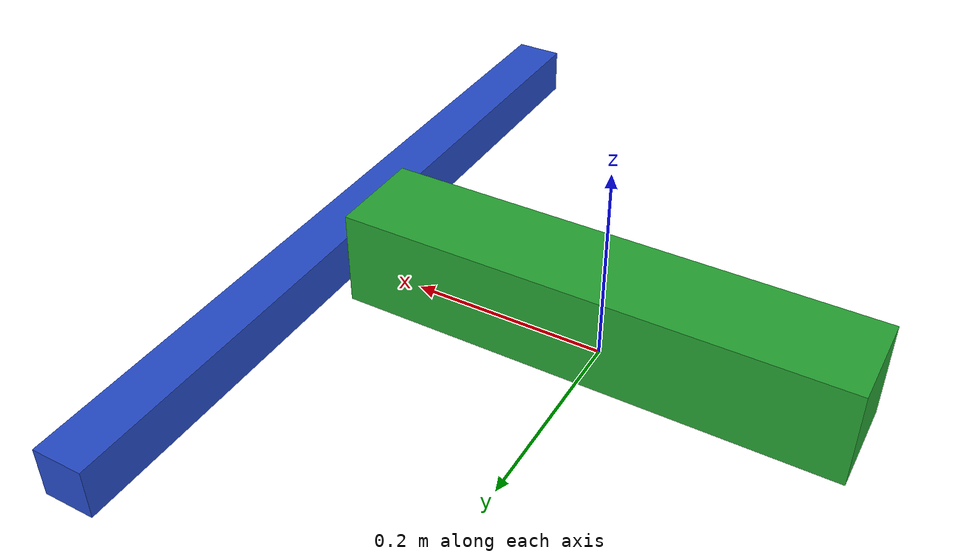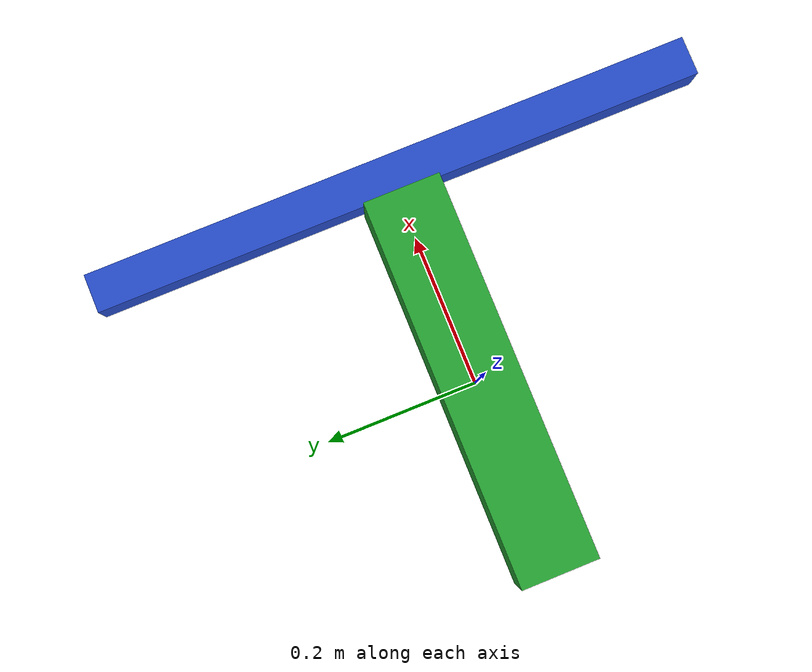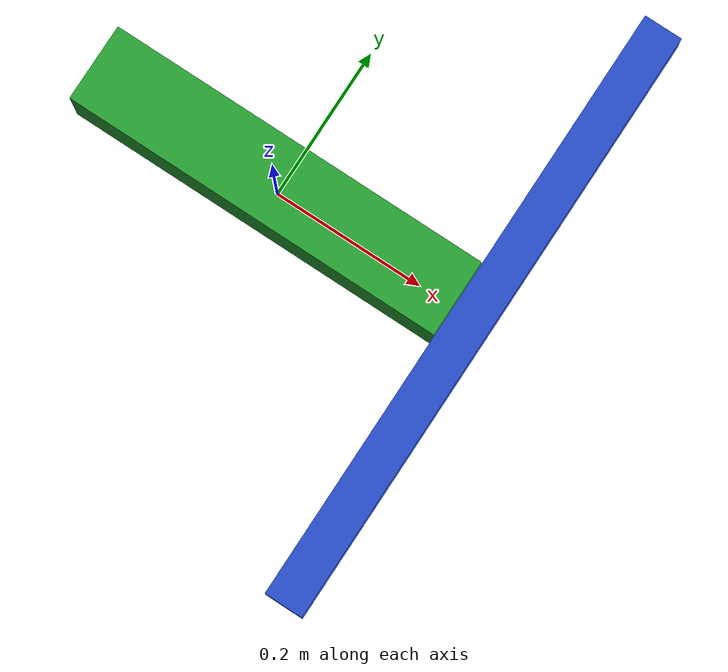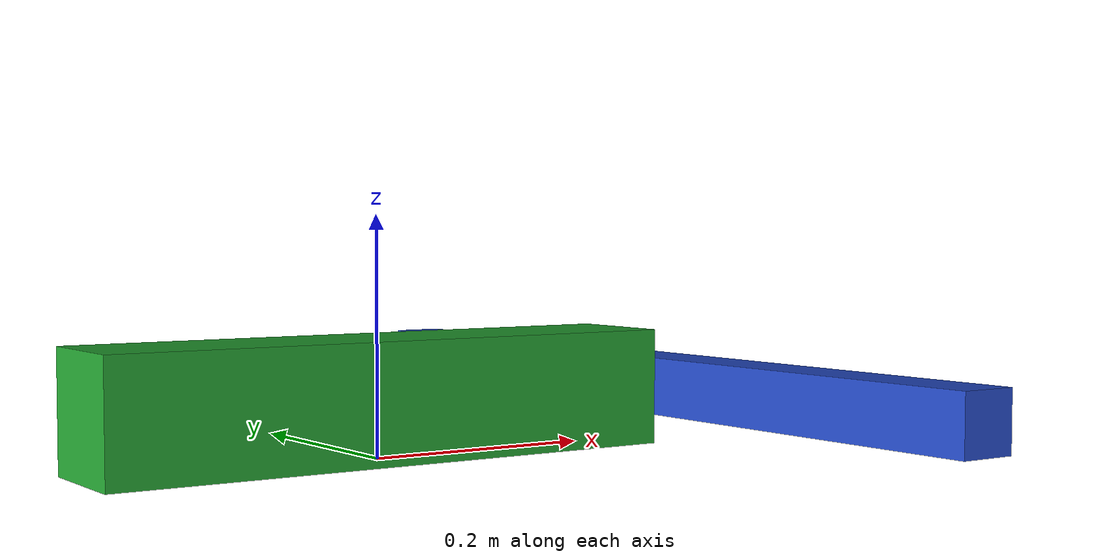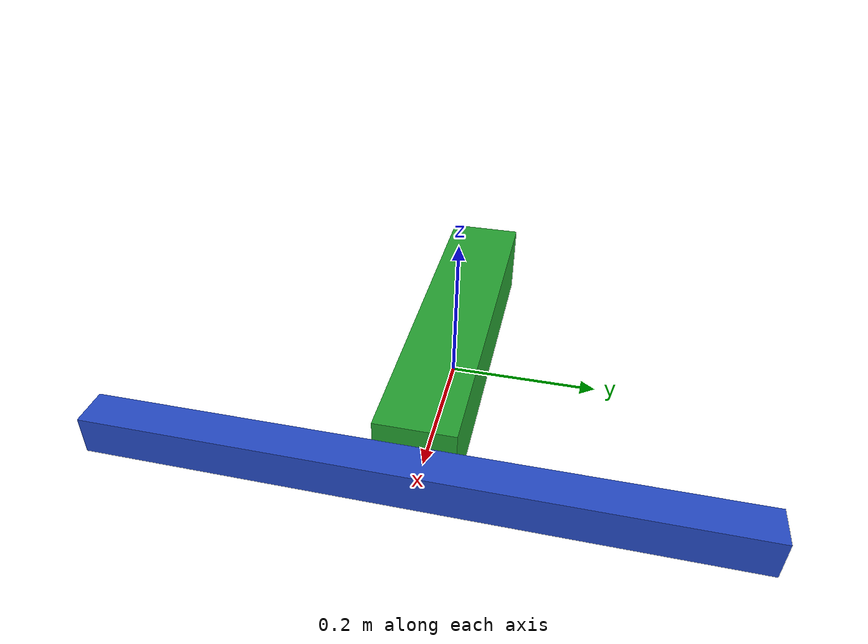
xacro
<?xml version='1.0'?>
<robot xmlns:xacro="http://www.ros.org/wiki/xacro" name="stereo">
    <xacro:include filename="dimensions.xacro"/>

    <!-- world -->
    <link name="world"></link>

    <!-- Sensor body -->
    <link name="body">
        <collision>
            <geometry>
                <box size="${body_dim}"/>
            </geometry>
        </collision>

        <visual>
            <geometry>
                <box size="${body_dim}"/>
            </geometry>
        </visual>

        <inertial>
            <mass value="1"/>
            <inertia ixx="1"  ixy="0"  ixz="0" iyy="1" iyz="0" izz="1" />
        </inertial>

    </link>

    <joint name="body_fix" type="fixed">
        <origin xyz="0 0 ${0.5*body_z}"/>
        <parent link="world"/>
        <child link="body"/>
    </joint>

    <!-- testing rod -->
    <link name="rod">
        <collision>
            <origin xyz="${rod_r} 0 0" rpy="${pi/2} 0 0"/>
            <geometry>
                <box size="${2*rod_r} ${2*rod_r} ${rod_len}"/>
            </geometry>
        </collision>

        <visual>
            <origin xyz="${rod_r} 0 0" rpy="${pi/2} 0 0"/>
            <geometry>
                <box size="${2*rod_r} ${2*rod_r} ${rod_len}"/>
            </geometry>
        </visual>

        <inertial>
            <mass value="1"/>
            <inertia ixx="1"  ixy="0"  ixz="0" iyy="1" iyz="0" izz="1" />
        </inertial>

    </link>

    <joint name="rod_body" type="revolute">
        <origin xyz="${body_x/2} 0 0" rpy="0 0 0"/>
        <parent link="body"/>
        <child link="rod"/>
        <limit lower="0" upper="${pi/2}" velocity="100" effort="100"/>
        <axis xyz="1 0 0"/>
    </joint>

    <xacro:include filename="gazebo.xacro"/>
</robot>

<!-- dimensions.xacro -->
<robot xmlns:xacro="http://www.ros.org/wiki/xacro">

    <!-- Body -->
    <xacro:property name="body_x" value="0.5"/>
    <xacro:property name="body_y" value="0.1"/>
    <xacro:property name="body_z" value="${body_y}"/>
    <xacro:property name="body_dim" value="${body_x} ${body_y} ${body_z}"/>

    <!-- Rod -->
    <xacro:property name="rod_r" value="${body_y/4}"/>
    <xacro:property name="rod_len" value="0.8"/>
</robot>
